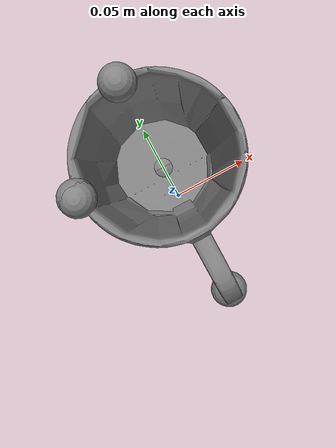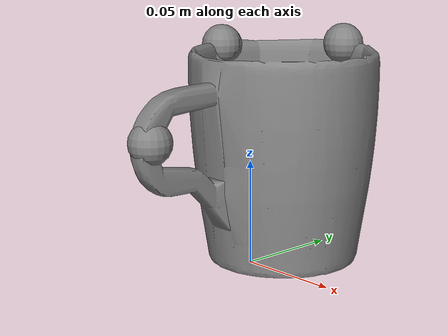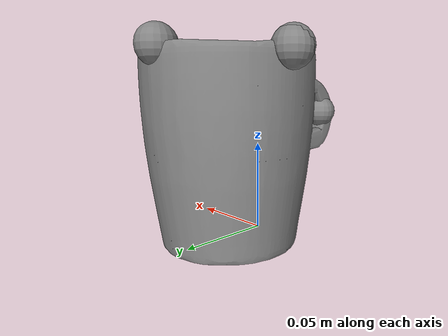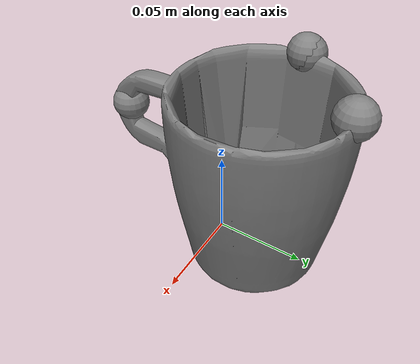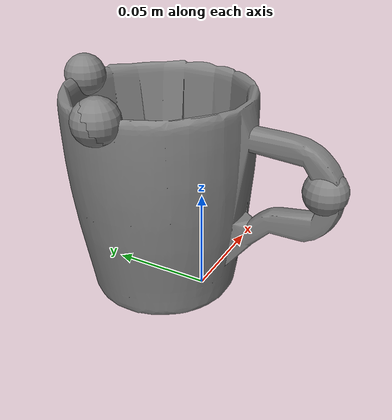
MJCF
<mujoco model="039_mug_10">
  <asset>
    <mesh name="039_mug_collision_10" file="039_mug_10.stl" scale="1.0 1.0 1.0"/>
  </asset>

  <worldbody>
<body name="039_mug_10">
  <geom name="039_mug_collision_10" type="mesh" mesh="039_mug_collision_10" />
  <site name="039_mug_10_keypoints_0" pos="0.0 0.063691 0.100379" size="0.01"/>
  <site name="039_mug_10_keypoints_1" pos="-0.044993 0.022383 0.099327" size="0.01"/>
  <site name="039_mug_10_keypoints_2" pos="-0.045333 0.023303 0.098727" size="0.01"/>
  <site name="039_mug_10_keypoints_3" pos="0.0 -0.059162 0.067182" size="0.01"/>
  <site name="039_mug_10_keypoints_4" pos="0.0 0.021553 7e-06" size="0.01"/>
  <site name="039_mug_10_keypoints_5" pos="0.0 0.021414 6e-06" size="0.01"/>
</body>
  </worldbody>
</mujoco>
